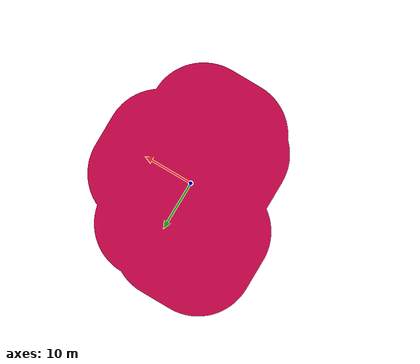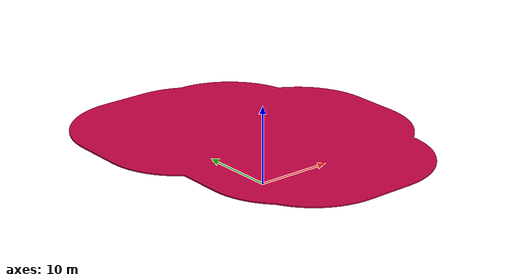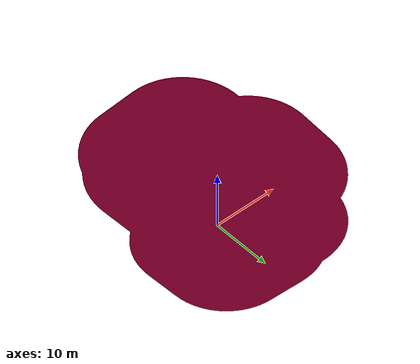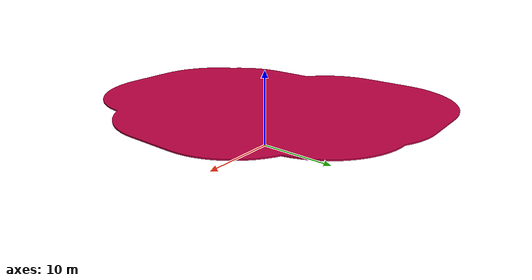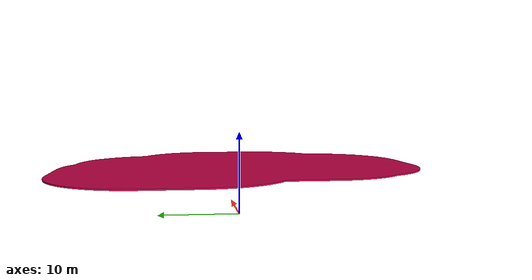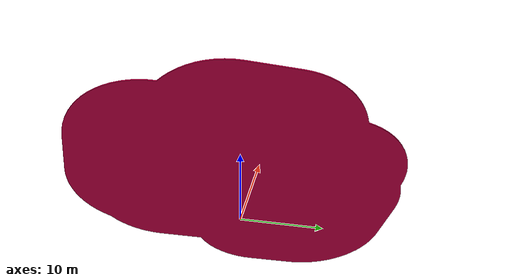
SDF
<?xml version="1.0" ?>
<sdf version="1.6">
  <model name="ceiling_6">
    <pose frame="">0 0 6 0 -0 0</pose>
    <static>1</static>
    <self_collide>0</self_collide>
    <allow_auto_disable>0</allow_auto_disable>
    <link name="mesh">
      <kinematic>0</kinematic>
      <gravity>1</gravity>
      <self_collide>0</self_collide>
      <collision name="collision">
        <geometry>
          <mesh>
            <uri>model://ceiling_6/meshes/xiEVzPppiS.stl</uri>
            <scale>1 1 1</scale>
          </mesh>
        </geometry>
        <pose frame="">3.56165 0.9256 -0.075 0 -0 0</pose>
        <max_contacts>20</max_contacts>
      </collision>
      <visual name="visual">
        <geometry>
          <mesh>
            <uri>model://ceiling_6/meshes/kyTvgpYsAJ.stl</uri>
            <scale>1 1 1</scale>
          </mesh>
        </geometry>
        <material>
          <ambient>0.792157 0.00392157 0.278431 1</ambient>
          <diffuse>0.792156862745098 0.00392156862745098 0.2784313725490196 1</diffuse>
        </material>
        <pose frame="">3.56165 0.9256 -0.075 0 -0 0</pose>
        <cast_shadows>1</cast_shadows>
        <transparency>0.0</transparency>
      </visual>
      <pose frame="">0 0 0 0 -0 0</pose>
    </link>
  </model>
</sdf>
